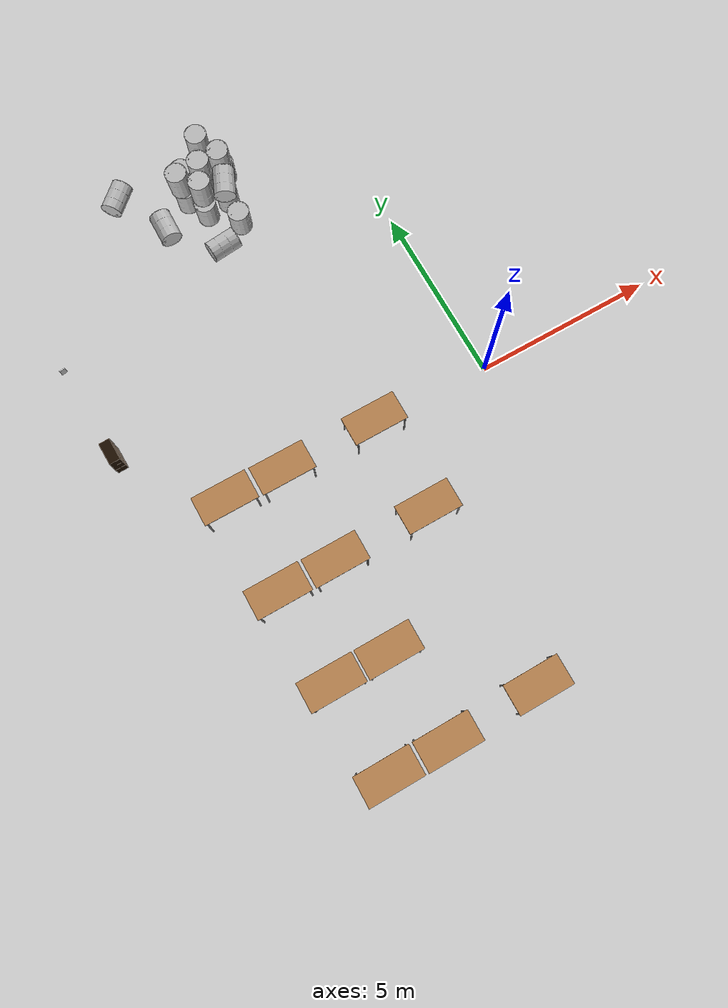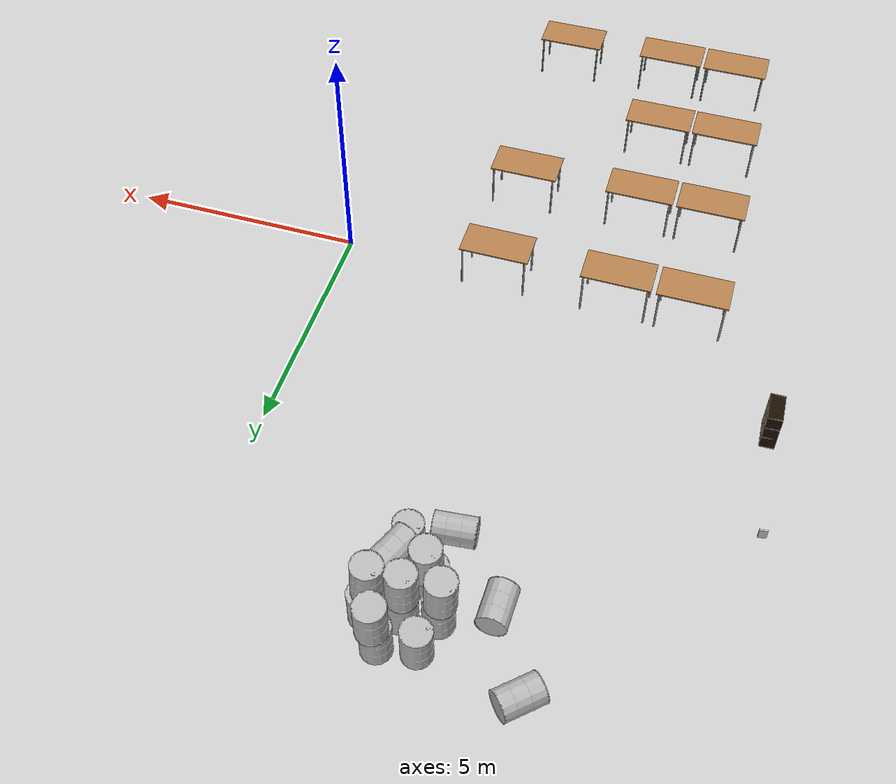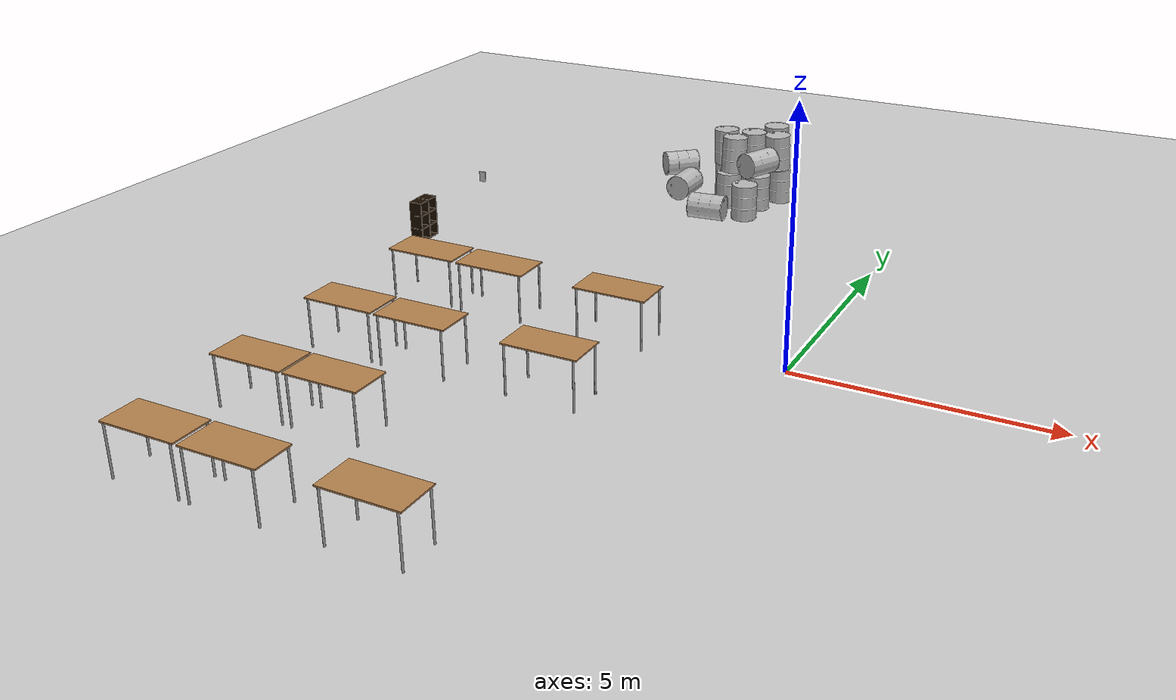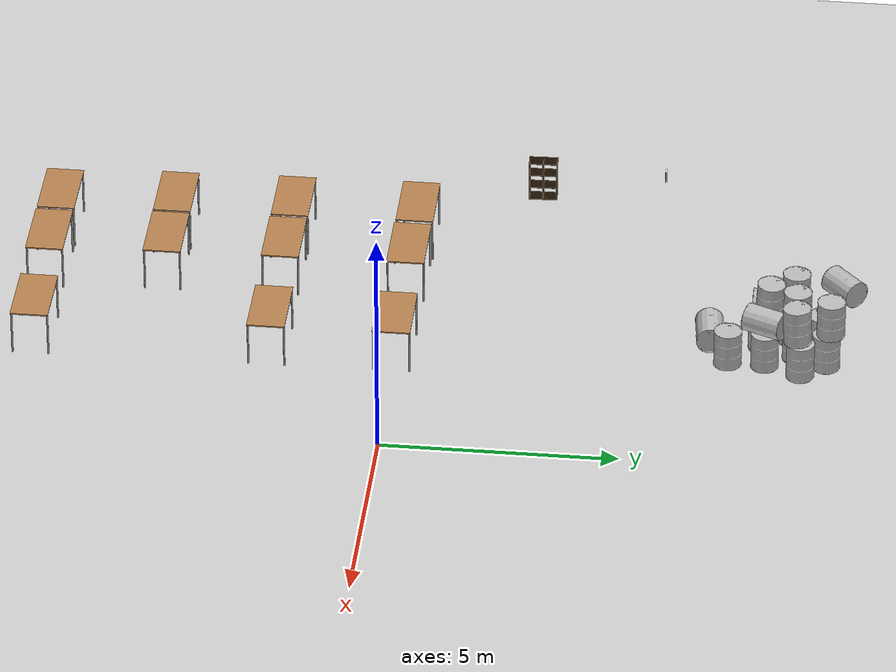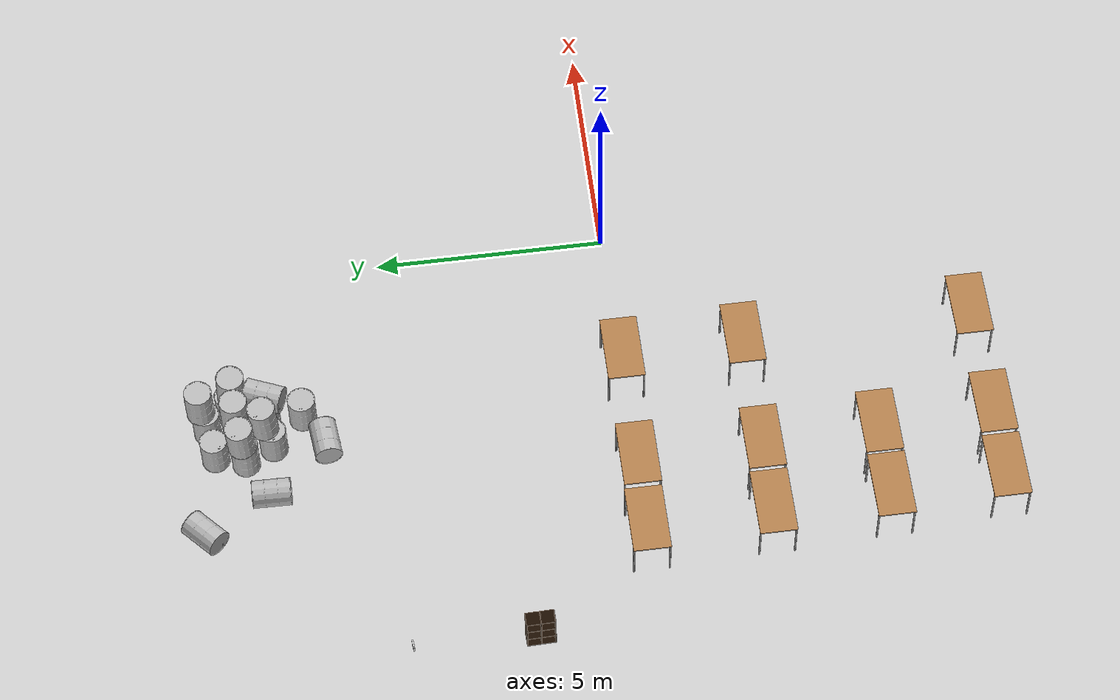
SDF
<sdf version="1.7">
 <world name="default">
  <model name="ground_plane">
   <static>1</static>
   <link name="link">
    <collision name="collision">
     <geometry><plane><normal>0 0 1</normal><size>100 100</size></plane></geometry>
     <surface><friction><ode><mu>100</mu><mu2>50</mu2></ode></friction></surface>
    </collision>
    <visual name="visual">
     <cast_shadows>0</cast_shadows>
     <geometry><plane><normal>0 0 1</normal><size>100 100</size></plane></geometry>
     <material>
      <script><uri>file://media/materials/scripts/gazebo.material</uri><name>Gazebo/Grey</name></script>
     </material>
    </visual>
   </link>
  </model>
  <model name="table">
   <static>1</static>
   <link name="link">
    <collision name="surface">
     <pose>0 0 1 0 -0 0</pose>
     <geometry><box><size>1.5 0.8 0.03</size></box></geometry>
     <surface><friction><ode><mu>0.6</mu><mu2>0.6</mu2></ode></friction></surface>
    </collision>
    <visual name="visual1">
     <pose>0 0 1 0 -0 0</pose>
     <geometry><box><size>1.5 0.8 0.03</size></box></geometry>
     <material>
      <script><uri>file://media/materials/scripts/gazebo.material</uri><name>Gazebo/Wood</name></script>
     </material>
    </visual>
    <collision name="front_left_leg">
     <pose>0.68 0.38 0.5 0 -0 0</pose>
     <geometry><cylinder><radius>0.02</radius><length>1</length></cylinder></geometry>
    </collision>
    <visual name="front_left_leg">
     <pose>0.68 0.38 0.5 0 -0 0</pose>
     <geometry><cylinder><radius>0.02</radius><length>1</length></cylinder></geometry>
     <material>
      <script><uri>file://media/materials/scripts/gazebo.material</uri><name>Gazebo/Grey</name></script>
     </material>
    </visual>
    <collision name="front_right_leg">
     <pose>0.68 -0.38 0.5 0 -0 0</pose>
     <geometry><cylinder><radius>0.02</radius><length>1</length></cylinder></geometry>
    </collision>
    <visual name="front_right_leg">
     <pose>0.68 -0.38 0.5 0 -0 0</pose>
     <geometry><cylinder><radius>0.02</radius><length>1</length></cylinder></geometry>
     <material>
      <script><uri>file://media/materials/scripts/gazebo.material</uri><name>Gazebo/Grey</name></script>
     </material>
    </visual>
    <collision name="back_right_leg">
     <pose>-0.68 -0.38 0.5 0 -0 0</pose>
     <geometry><cylinder><radius>0.02</radius><length>1</length></cylinder></geometry>
    </collision>
    <visual name="back_right_leg">
     <pose>-0.68 -0.38 0.5 0 -0 0</pose>
     <geometry><cylinder><radius>0.02</radius><length>1</length></cylinder></geometry>
     <material>
      <script><uri>file://media/materials/scripts/gazebo.material</uri><name>Gazebo/Grey</name></script>
     </material>
    </visual>
    <collision name="back_left_leg">
     <pose>-0.68 0.38 0.5 0 -0 0</pose>
     <geometry><cylinder><radius>0.02</radius><length>1</length></cylinder></geometry>
    </collision>
    <visual name="back_left_leg">
     <pose>-0.68 0.38 0.5 0 -0 0</pose>
     <geometry><cylinder><radius>0.02</radius><length>1</length></cylinder></geometry>
     <material>
      <script><uri>file://media/materials/scripts/gazebo.material</uri><name>Gazebo/Grey</name></script>
     </material>
    </visual>
   </link>
   <pose>-7.55177 -2.65765 0 0 -0 0</pose>
  </model>
  <model name="table_clone">
   <static>1</static>
   <link name="link">
    <collision name="surface">
     <pose>0 0 1 0 -0 0</pose>
     <geometry><box><size>1.5 0.8 0.03</size></box></geometry>
     <surface><friction><ode><mu>0.6</mu><mu2>0.6</mu2></ode></friction></surface>
    </collision>
    <visual name="visual1">
     <pose>0 0 1 0 -0 0</pose>
     <geometry><box><size>1.5 0.8 0.03</size></box></geometry>
     <material>
      <script><uri>file://media/materials/scripts/gazebo.material</uri><name>Gazebo/Wood</name></script>
     </material>
    </visual>
    <collision name="front_left_leg">
     <pose>0.68 0.38 0.5 0 -0 0</pose>
     <geometry><cylinder><radius>0.02</radius><length>1</length></cylinder></geometry>
    </collision>
    <visual name="front_left_leg">
     <pose>0.68 0.38 0.5 0 -0 0</pose>
     <geometry><cylinder><radius>0.02</radius><length>1</length></cylinder></geometry>
     <material>
      <script><uri>file://media/materials/scripts/gazebo.material</uri><name>Gazebo/Grey</name></script>
     </material>
    </visual>
    <collision name="front_right_leg">
     <pose>0.68 -0.38 0.5 0 -0 0</pose>
     <geometry><cylinder><radius>0.02</radius><length>1</length></cylinder></geometry>
    </collision>
    <visual name="front_right_leg">
     <pose>0.68 -0.38 0.5 0 -0 0</pose>
     <geometry><cylinder><radius>0.02</radius><length>1</length></cylinder></geometry>
     <material>
      <script><uri>file://media/materials/scripts/gazebo.material</uri><name>Gazebo/Grey</name></script>
     </material>
    </visual>
    <collision name="back_right_leg">
     <pose>-0.68 -0.38 0.5 0 -0 0</pose>
     <geometry><cylinder><radius>0.02</radius><length>1</length></cylinder></geometry>
    </collision>
    <visual name="back_right_leg">
     <pose>-0.68 -0.38 0.5 0 -0 0</pose>
     <geometry><cylinder><radius>0.02</radius><length>1</length></cylinder></geometry>
     <material>
      <script><uri>file://media/materials/scripts/gazebo.material</uri><name>Gazebo/Grey</name></script>
     </material>
    </visual>
    <collision name="back_left_leg">
     <pose>-0.68 0.38 0.5 0 -0 0</pose>
     <geometry><cylinder><radius>0.02</radius><length>1</length></cylinder></geometry>
    </collision>
    <visual name="back_left_leg">
     <pose>-0.68 0.38 0.5 0 -0 0</pose>
     <geometry><cylinder><radius>0.02</radius><length>1</length></cylinder></geometry>
     <material>
      <script><uri>file://media/materials/scripts/gazebo.material</uri><name>Gazebo/Grey</name></script>
     </material>
    </visual>
   </link>
   <pose>-5.96904 -2.67059 0 0 -0 0</pose>
  </model>
  <model name="table_clone_0">
   <static>1</static>
   <link name="link">
    <collision name="surface">
     <pose>0 0 1 0 -0 0</pose>
     <geometry><box><size>1.5 0.8 0.03</size></box></geometry>
     <surface><friction><ode><mu>0.6</mu><mu2>0.6</mu2></ode></friction></surface>
    </collision>
    <visual name="visual1">
     <pose>0 0 1 0 -0 0</pose>
     <geometry><box><size>1.5 0.8 0.03</size></box></geometry>
     <material>
      <script><uri>file://media/materials/scripts/gazebo.material</uri><name>Gazebo/Wood</name></script>
     </material>
    </visual>
    <collision name="front_left_leg">
     <pose>0.68 0.38 0.5 0 -0 0</pose>
     <geometry><cylinder><radius>0.02</radius><length>1</length></cylinder></geometry>
    </collision>
    <visual name="front_left_leg">
     <pose>0.68 0.38 0.5 0 -0 0</pose>
     <geometry><cylinder><radius>0.02</radius><length>1</length></cylinder></geometry>
     <material>
      <script><uri>file://media/materials/scripts/gazebo.material</uri><name>Gazebo/Grey</name></script>
     </material>
    </visual>
    <collision name="front_right_leg">
     <pose>0.68 -0.38 0.5 0 -0 0</pose>
     <geometry><cylinder><radius>0.02</radius><length>1</length></cylinder></geometry>
    </collision>
    <visual name="front_right_leg">
     <pose>0.68 -0.38 0.5 0 -0 0</pose>
     <geometry><cylinder><radius>0.02</radius><length>1</length></cylinder></geometry>
     <material>
      <script><uri>file://media/materials/scripts/gazebo.material</uri><name>Gazebo/Grey</name></script>
     </material>
    </visual>
    <collision name="back_right_leg">
     <pose>-0.68 -0.38 0.5 0 -0 0</pose>
     <geometry><cylinder><radius>0.02</radius><length>1</length></cylinder></geometry>
    </collision>
    <visual name="back_right_leg">
     <pose>-0.68 -0.38 0.5 0 -0 0</pose>
     <geometry><cylinder><radius>0.02</radius><length>1</length></cylinder></geometry>
     <material>
      <script><uri>file://media/materials/scripts/gazebo.material</uri><name>Gazebo/Grey</name></script>
     </material>
    </visual>
    <collision name="back_left_leg">
     <pose>-0.68 0.38 0.5 0 -0 0</pose>
     <geometry><cylinder><radius>0.02</radius><length>1</length></cylinder></geometry>
    </collision>
    <visual name="back_left_leg">
     <pose>-0.68 0.38 0.5 0 -0 0</pose>
     <geometry><cylinder><radius>0.02</radius><length>1</length></cylinder></geometry>
     <material>
      <script><uri>file://media/materials/scripts/gazebo.material</uri><name>Gazebo/Grey</name></script>
     </material>
    </visual>
   </link>
   <pose>-3.33754 -2.64504 0 0 -0 0</pose>
  </model>
  <model name="table_clone_2">
   <static>1</static>
   <link name="link">
    <collision name="surface">
     <pose>0 0 1 0 -0 0</pose>
     <geometry><box><size>1.5 0.8 0.03</size></box></geometry>
     <surface><friction><ode><mu>0.6</mu><mu2>0.6</mu2></ode></friction></surface>
    </collision>
    <visual name="visual1">
     <pose>0 0 1 0 -0 0</pose>
     <geometry><box><size>1.5 0.8 0.03</size></box></geometry>
     <material>
      <script><uri>file://media/materials/scripts/gazebo.material</uri><name>Gazebo/Wood</name></script>
     </material>
    </visual>
    <collision name="front_left_leg">
     <pose>0.68 0.38 0.5 0 -0 0</pose>
     <geometry><cylinder><radius>0.02</radius><length>1</length></cylinder></geometry>
    </collision>
    <visual name="front_left_leg">
     <pose>0.68 0.38 0.5 0 -0 0</pose>
     <geometry><cylinder><radius>0.02</radius><length>1</length></cylinder></geometry>
     <material>
      <script><uri>file://media/materials/scripts/gazebo.material</uri><name>Gazebo/Grey</name></script>
     </material>
    </visual>
    <collision name="front_right_leg">
     <pose>0.68 -0.38 0.5 0 -0 0</pose>
     <geometry><cylinder><radius>0.02</radius><length>1</length></cylinder></geometry>
    </collision>
    <visual name="front_right_leg">
     <pose>0.68 -0.38 0.5 0 -0 0</pose>
     <geometry><cylinder><radius>0.02</radius><length>1</length></cylinder></geometry>
     <material>
      <script><uri>file://media/materials/scripts/gazebo.material</uri><name>Gazebo/Grey</name></script>
     </material>
    </visual>
    <collision name="back_right_leg">
     <pose>-0.68 -0.38 0.5 0 -0 0</pose>
     <geometry><cylinder><radius>0.02</radius><length>1</length></cylinder></geometry>
    </collision>
    <visual name="back_right_leg">
     <pose>-0.68 -0.38 0.5 0 -0 0</pose>
     <geometry><cylinder><radius>0.02</radius><length>1</length></cylinder></geometry>
     <material>
      <script><uri>file://media/materials/scripts/gazebo.material</uri><name>Gazebo/Grey</name></script>
     </material>
    </visual>
    <collision name="back_left_leg">
     <pose>-0.68 0.38 0.5 0 -0 0</pose>
     <geometry><cylinder><radius>0.02</radius><length>1</length></cylinder></geometry>
    </collision>
    <visual name="back_left_leg">
     <pose>-0.68 0.38 0.5 0 -0 0</pose>
     <geometry><cylinder><radius>0.02</radius><length>1</length></cylinder></geometry>
     <material>
      <script><uri>file://media/materials/scripts/gazebo.material</uri><name>Gazebo/Grey</name></script>
     </material>
    </visual>
   </link>
   <pose>-7.46217 -5.18144 0 0 -0 0</pose>
  </model>
  <model name="table_clone_3">
   <static>1</static>
   <link name="link">
    <collision name="surface">
     <pose>0 0 1 0 -0 0</pose>
     <geometry><box><size>1.5 0.8 0.03</size></box></geometry>
     <surface><friction><ode><mu>0.6</mu><mu2>0.6</mu2></ode></friction></surface>
    </collision>
    <visual name="visual1">
     <pose>0 0 1 0 -0 0</pose>
     <geometry><box><size>1.5 0.8 0.03</size></box></geometry>
     <material>
      <script><uri>file://media/materials/scripts/gazebo.material</uri><name>Gazebo/Wood</name></script>
     </material>
    </visual>
    <collision name="front_left_leg">
     <pose>0.68 0.38 0.5 0 -0 0</pose>
     <geometry><cylinder><radius>0.02</radius><length>1</length></cylinder></geometry>
    </collision>
    <visual name="front_left_leg">
     <pose>0.68 0.38 0.5 0 -0 0</pose>
     <geometry><cylinder><radius>0.02</radius><length>1</length></cylinder></geometry>
     <material>
      <script><uri>file://media/materials/scripts/gazebo.material</uri><name>Gazebo/Grey</name></script>
     </material>
    </visual>
    <collision name="front_right_leg">
     <pose>0.68 -0.38 0.5 0 -0 0</pose>
     <geometry><cylinder><radius>0.02</radius><length>1</length></cylinder></geometry>
    </collision>
    <visual name="front_right_leg">
     <pose>0.68 -0.38 0.5 0 -0 0</pose>
     <geometry><cylinder><radius>0.02</radius><length>1</length></cylinder></geometry>
     <material>
      <script><uri>file://media/materials/scripts/gazebo.material</uri><name>Gazebo/Grey</name></script>
     </material>
    </visual>
    <collision name="back_right_leg">
     <pose>-0.68 -0.38 0.5 0 -0 0</pose>
     <geometry><cylinder><radius>0.02</radius><length>1</length></cylinder></geometry>
    </collision>
    <visual name="back_right_leg">
     <pose>-0.68 -0.38 0.5 0 -0 0</pose>
     <geometry><cylinder><radius>0.02</radius><length>1</length></cylinder></geometry>
     <material>
      <script><uri>file://media/materials/scripts/gazebo.material</uri><name>Gazebo/Grey</name></script>
     </material>
    </visual>
    <collision name="back_left_leg">
     <pose>-0.68 0.38 0.5 0 -0 0</pose>
     <geometry><cylinder><radius>0.02</radius><length>1</length></cylinder></geometry>
    </collision>
    <visual name="back_left_leg">
     <pose>-0.68 0.38 0.5 0 -0 0</pose>
     <geometry><cylinder><radius>0.02</radius><length>1</length></cylinder></geometry>
     <material>
      <script><uri>file://media/materials/scripts/gazebo.material</uri><name>Gazebo/Grey</name></script>
     </material>
    </visual>
   </link>
   <pose>-5.90194 -5.18683 0 0 -0 0</pose>
  </model>
  <model name="table_clone_6">
   <static>1</static>
   <link name="link">
    <collision name="surface">
     <pose>0 0 1 0 -0 0</pose>
     <geometry><box><size>1.5 0.8 0.03</size></box></geometry>
     <surface><friction><ode><mu>0.6</mu><mu2>0.6</mu2></ode></friction></surface>
    </collision>
    <visual name="visual1">
     <pose>0 0 1 0 -0 0</pose>
     <geometry><box><size>1.5 0.8 0.03</size></box></geometry>
     <material>
      <script><uri>file://media/materials/scripts/gazebo.material</uri><name>Gazebo/Wood</name></script>
     </material>
    </visual>
    <collision name="front_left_leg">
     <pose>0.68 0.38 0.5 0 -0 0</pose>
     <geometry><cylinder><radius>0.02</radius><length>1</length></cylinder></geometry>
    </collision>
    <visual name="front_left_leg">
     <pose>0.68 0.38 0.5 0 -0 0</pose>
     <geometry><cylinder><radius>0.02</radius><length>1</length></cylinder></geometry>
     <material>
      <script><uri>file://media/materials/scripts/gazebo.material</uri><name>Gazebo/Grey</name></script>
     </material>
    </visual>
    <collision name="front_right_leg">
     <pose>0.68 -0.38 0.5 0 -0 0</pose>
     <geometry><cylinder><radius>0.02</radius><length>1</length></cylinder></geometry>
    </collision>
    <visual name="front_right_leg">
     <pose>0.68 -0.38 0.5 0 -0 0</pose>
     <geometry><cylinder><radius>0.02</radius><length>1</length></cylinder></geometry>
     <material>
      <script><uri>file://media/materials/scripts/gazebo.material</uri><name>Gazebo/Grey</name></script>
     </material>
    </visual>
    <collision name="back_right_leg">
     <pose>-0.68 -0.38 0.5 0 -0 0</pose>
     <geometry><cylinder><radius>0.02</radius><length>1</length></cylinder></geometry>
    </collision>
    <visual name="back_right_leg">
     <pose>-0.68 -0.38 0.5 0 -0 0</pose>
     <geometry><cylinder><radius>0.02</radius><length>1</length></cylinder></geometry>
     <material>
      <script><uri>file://media/materials/scripts/gazebo.material</uri><name>Gazebo/Grey</name></script>
     </material>
    </visual>
    <collision name="back_left_leg">
     <pose>-0.68 0.38 0.5 0 -0 0</pose>
     <geometry><cylinder><radius>0.02</radius><length>1</length></cylinder></geometry>
    </collision>
    <visual name="back_left_leg">
     <pose>-0.68 0.38 0.5 0 -0 0</pose>
     <geometry><cylinder><radius>0.02</radius><length>1</length></cylinder></geometry>
     <material>
      <script><uri>file://media/materials/scripts/gazebo.material</uri><name>Gazebo/Grey</name></script>
     </material>
    </visual>
   </link>
   <pose>-7.31794 -7.66718 0 0 -0 0</pose>
  </model>
  <model name="table_clone_7">
   <static>1</static>
   <link name="link">
    <collision name="surface">
     <pose>0 0 1 0 -0 0</pose>
     <geometry><box><size>1.5 0.8 0.03</size></box></geometry>
     <surface><friction><ode><mu>0.6</mu><mu2>0.6</mu2></ode></friction></surface>
    </collision>
    <visual name="visual1">
     <pose>0 0 1 0 -0 0</pose>
     <geometry><box><size>1.5 0.8 0.03</size></box></geometry>
     <material>
      <script><uri>file://media/materials/scripts/gazebo.material</uri><name>Gazebo/Wood</name></script>
     </material>
    </visual>
    <collision name="front_left_leg">
     <pose>0.68 0.38 0.5 0 -0 0</pose>
     <geometry><cylinder><radius>0.02</radius><length>1</length></cylinder></geometry>
    </collision>
    <visual name="front_left_leg">
     <pose>0.68 0.38 0.5 0 -0 0</pose>
     <geometry><cylinder><radius>0.02</radius><length>1</length></cylinder></geometry>
     <material>
      <script><uri>file://media/materials/scripts/gazebo.material</uri><name>Gazebo/Grey</name></script>
     </material>
    </visual>
    <collision name="front_right_leg">
     <pose>0.68 -0.38 0.5 0 -0 0</pose>
     <geometry><cylinder><radius>0.02</radius><length>1</length></cylinder></geometry>
    </collision>
    <visual name="front_right_leg">
     <pose>0.68 -0.38 0.5 0 -0 0</pose>
     <geometry><cylinder><radius>0.02</radius><length>1</length></cylinder></geometry>
     <material>
      <script><uri>file://media/materials/scripts/gazebo.material</uri><name>Gazebo/Grey</name></script>
     </material>
    </visual>
    <collision name="back_right_leg">
     <pose>-0.68 -0.38 0.5 0 -0 0</pose>
     <geometry><cylinder><radius>0.02</radius><length>1</length></cylinder></geometry>
    </collision>
    <visual name="back_right_leg">
     <pose>-0.68 -0.38 0.5 0 -0 0</pose>
     <geometry><cylinder><radius>0.02</radius><length>1</length></cylinder></geometry>
     <material>
      <script><uri>file://media/materials/scripts/gazebo.material</uri><name>Gazebo/Grey</name></script>
     </material>
    </visual>
    <collision name="back_left_leg">
     <pose>-0.68 0.38 0.5 0 -0 0</pose>
     <geometry><cylinder><radius>0.02</radius><length>1</length></cylinder></geometry>
    </collision>
    <visual name="back_left_leg">
     <pose>-0.68 0.38 0.5 0 -0 0</pose>
     <geometry><cylinder><radius>0.02</radius><length>1</length></cylinder></geometry>
     <material>
      <script><uri>file://media/materials/scripts/gazebo.material</uri><name>Gazebo/Grey</name></script>
     </material>
    </visual>
   </link>
   <pose>-5.73834 -7.67638 0 0 -0 0</pose>
  </model>
  <model name="table_clone_8">
   <static>1</static>
   <link name="link">
    <collision name="surface">
     <pose>0 0 1 0 -0 0</pose>
     <geometry><box><size>1.5 0.8 0.03</size></box></geometry>
     <surface><friction><ode><mu>0.6</mu><mu2>0.6</mu2></ode></friction></surface>
    </collision>
    <visual name="visual1">
     <pose>0 0 1 0 -0 0</pose>
     <geometry><box><size>1.5 0.8 0.03</size></box></geometry>
     <material>
      <script><uri>file://media/materials/scripts/gazebo.material</uri><name>Gazebo/Wood</name></script>
     </material>
    </visual>
    <collision name="front_left_leg">
     <pose>0.68 0.38 0.5 0 -0 0</pose>
     <geometry><cylinder><radius>0.02</radius><length>1</length></cylinder></geometry>
    </collision>
    <visual name="front_left_leg">
     <pose>0.68 0.38 0.5 0 -0 0</pose>
     <geometry><cylinder><radius>0.02</radius><length>1</length></cylinder></geometry>
     <material>
      <script><uri>file://media/materials/scripts/gazebo.material</uri><name>Gazebo/Grey</name></script>
     </material>
    </visual>
    <collision name="front_right_leg">
     <pose>0.68 -0.38 0.5 0 -0 0</pose>
     <geometry><cylinder><radius>0.02</radius><length>1</length></cylinder></geometry>
    </collision>
    <visual name="front_right_leg">
     <pose>0.68 -0.38 0.5 0 -0 0</pose>
     <geometry><cylinder><radius>0.02</radius><length>1</length></cylinder></geometry>
     <material>
      <script><uri>file://media/materials/scripts/gazebo.material</uri><name>Gazebo/Grey</name></script>
     </material>
    </visual>
    <collision name="back_right_leg">
     <pose>-0.68 -0.38 0.5 0 -0 0</pose>
     <geometry><cylinder><radius>0.02</radius><length>1</length></cylinder></geometry>
    </collision>
    <visual name="back_right_leg">
     <pose>-0.68 -0.38 0.5 0 -0 0</pose>
     <geometry><cylinder><radius>0.02</radius><length>1</length></cylinder></geometry>
     <material>
      <script><uri>file://media/materials/scripts/gazebo.material</uri><name>Gazebo/Grey</name></script>
     </material>
    </visual>
    <collision name="back_left_leg">
     <pose>-0.68 0.38 0.5 0 -0 0</pose>
     <geometry><cylinder><radius>0.02</radius><length>1</length></cylinder></geometry>
    </collision>
    <visual name="back_left_leg">
     <pose>-0.68 0.38 0.5 0 -0 0</pose>
     <geometry><cylinder><radius>0.02</radius><length>1</length></cylinder></geometry>
     <material>
      <script><uri>file://media/materials/scripts/gazebo.material</uri><name>Gazebo/Grey</name></script>
     </material>
    </visual>
   </link>
   <pose>-3.24202 -7.62181 0 0 -0 0</pose>
  </model>
  <model name="table_clone_10">
   <static>1</static>
   <link name="link">
    <collision name="surface">
     <pose>0 0 1 0 -0 0</pose>
     <geometry><box><size>1.5 0.8 0.03</size></box></geometry>
     <surface><friction><ode><mu>0.6</mu><mu2>0.6</mu2></ode></friction></surface>
    </collision>
    <visual name="visual1">
     <pose>0 0 1 0 -0 0</pose>
     <geometry><box><size>1.5 0.8 0.03</size></box></geometry>
     <material>
      <script><uri>file://media/materials/scripts/gazebo.material</uri><name>Gazebo/Wood</name></script>
     </material>
    </visual>
    <collision name="front_left_leg">
     <pose>0.68 0.38 0.5 0 -0 0</pose>
     <geometry><cylinder><radius>0.02</radius><length>1</length></cylinder></geometry>
    </collision>
    <visual name="front_left_leg">
     <pose>0.68 0.38 0.5 0 -0 0</pose>
     <geometry><cylinder><radius>0.02</radius><length>1</length></cylinder></geometry>
     <material>
      <script><uri>file://media/materials/scripts/gazebo.material</uri><name>Gazebo/Grey</name></script>
     </material>
    </visual>
    <collision name="front_right_leg">
     <pose>0.68 -0.38 0.5 0 -0 0</pose>
     <geometry><cylinder><radius>0.02</radius><length>1</length></cylinder></geometry>
    </collision>
    <visual name="front_right_leg">
     <pose>0.68 -0.38 0.5 0 -0 0</pose>
     <geometry><cylinder><radius>0.02</radius><length>1</length></cylinder></geometry>
     <material>
      <script><uri>file://media/materials/scripts/gazebo.material</uri><name>Gazebo/Grey</name></script>
     </material>
    </visual>
    <collision name="back_right_leg">
     <pose>-0.68 -0.38 0.5 0 -0 0</pose>
     <geometry><cylinder><radius>0.02</radius><length>1</length></cylinder></geometry>
    </collision>
    <visual name="back_right_leg">
     <pose>-0.68 -0.38 0.5 0 -0 0</pose>
     <geometry><cylinder><radius>0.02</radius><length>1</length></cylinder></geometry>
     <material>
      <script><uri>file://media/materials/scripts/gazebo.material</uri><name>Gazebo/Grey</name></script>
     </material>
    </visual>
    <collision name="back_left_leg">
     <pose>-0.68 0.38 0.5 0 -0 0</pose>
     <geometry><cylinder><radius>0.02</radius><length>1</length></cylinder></geometry>
    </collision>
    <visual name="back_left_leg">
     <pose>-0.68 0.38 0.5 0 -0 0</pose>
     <geometry><cylinder><radius>0.02</radius><length>1</length></cylinder></geometry>
     <material>
      <script><uri>file://media/materials/scripts/gazebo.material</uri><name>Gazebo/Grey</name></script>
     </material>
    </visual>
   </link>
   <pose>-7.61701 0.015326 0 0 -0 0</pose>
  </model>
  <model name="table_clone_11">
   <static>1</static>
   <link name="link">
    <collision name="surface">
     <pose>0 0 1 0 -0 0</pose>
     <geometry><box><size>1.5 0.8 0.03</size></box></geometry>
     <surface><friction><ode><mu>0.6</mu><mu2>0.6</mu2></ode></friction></surface>
    </collision>
    <visual name="visual1">
     <pose>0 0 1 0 -0 0</pose>
     <geometry><box><size>1.5 0.8 0.03</size></box></geometry>
     <material>
      <script><uri>file://media/materials/scripts/gazebo.material</uri><name>Gazebo/Wood</name></script>
     </material>
    </visual>
    <collision name="front_left_leg">
     <pose>0.68 0.38 0.5 0 -0 0</pose>
     <geometry><cylinder><radius>0.02</radius><length>1</length></cylinder></geometry>
    </collision>
    <visual name="front_left_leg">
     <pose>0.68 0.38 0.5 0 -0 0</pose>
     <geometry><cylinder><radius>0.02</radius><length>1</length></cylinder></geometry>
     <material>
      <script><uri>file://media/materials/scripts/gazebo.material</uri><name>Gazebo/Grey</name></script>
     </material>
    </visual>
    <collision name="front_right_leg">
     <pose>0.68 -0.38 0.5 0 -0 0</pose>
     <geometry><cylinder><radius>0.02</radius><length>1</length></cylinder></geometry>
    </collision>
    <visual name="front_right_leg">
     <pose>0.68 -0.38 0.5 0 -0 0</pose>
     <geometry><cylinder><radius>0.02</radius><length>1</length></cylinder></geometry>
     <material>
      <script><uri>file://media/materials/scripts/gazebo.material</uri><name>Gazebo/Grey</name></script>
     </material>
    </visual>
    <collision name="back_right_leg">
     <pose>-0.68 -0.38 0.5 0 -0 0</pose>
     <geometry><cylinder><radius>0.02</radius><length>1</length></cylinder></geometry>
    </collision>
    <visual name="back_right_leg">
     <pose>-0.68 -0.38 0.5 0 -0 0</pose>
     <geometry><cylinder><radius>0.02</radius><length>1</length></cylinder></geometry>
     <material>
      <script><uri>file://media/materials/scripts/gazebo.material</uri><name>Gazebo/Grey</name></script>
     </material>
    </visual>
    <collision name="back_left_leg">
     <pose>-0.68 0.38 0.5 0 -0 0</pose>
     <geometry><cylinder><radius>0.02</radius><length>1</length></cylinder></geometry>
    </collision>
    <visual name="back_left_leg">
     <pose>-0.68 0.38 0.5 0 -0 0</pose>
     <geometry><cylinder><radius>0.02</radius><length>1</length></cylinder></geometry>
     <material>
      <script><uri>file://media/materials/scripts/gazebo.material</uri><name>Gazebo/Grey</name></script>
     </material>
    </visual>
   </link>
   <pose>-6.01438 -0.004729 0 0 -0 0</pose>
  </model>
  <model name="table_clone_12">
   <static>1</static>
   <link name="link">
    <collision name="surface">
     <pose>0 0 1 0 -0 0</pose>
     <geometry><box><size>1.5 0.8 0.03</size></box></geometry>
     <surface><friction><ode><mu>0.6</mu><mu2>0.6</mu2></ode></friction></surface>
    </collision>
    <visual name="visual1">
     <pose>0 0 1 0 -0 0</pose>
     <geometry><box><size>1.5 0.8 0.03</size></box></geometry>
     <material>
      <script><uri>file://media/materials/scripts/gazebo.material</uri><name>Gazebo/Wood</name></script>
     </material>
    </visual>
    <collision name="front_left_leg">
     <pose>0.68 0.38 0.5 0 -0 0</pose>
     <geometry><cylinder><radius>0.02</radius><length>1</length></cylinder></geometry>
    </collision>
    <visual name="front_left_leg">
     <pose>0.68 0.38 0.5 0 -0 0</pose>
     <geometry><cylinder><radius>0.02</radius><length>1</length></cylinder></geometry>
     <material>
      <script><uri>file://media/materials/scripts/gazebo.material</uri><name>Gazebo/Grey</name></script>
     </material>
    </visual>
    <collision name="front_right_leg">
     <pose>0.68 -0.38 0.5 0 -0 0</pose>
     <geometry><cylinder><radius>0.02</radius><length>1</length></cylinder></geometry>
    </collision>
    <visual name="front_right_leg">
     <pose>0.68 -0.38 0.5 0 -0 0</pose>
     <geometry><cylinder><radius>0.02</radius><length>1</length></cylinder></geometry>
     <material>
      <script><uri>file://media/materials/scripts/gazebo.material</uri><name>Gazebo/Grey</name></script>
     </material>
    </visual>
    <collision name="back_right_leg">
     <pose>-0.68 -0.38 0.5 0 -0 0</pose>
     <geometry><cylinder><radius>0.02</radius><length>1</length></cylinder></geometry>
    </collision>
    <visual name="back_right_leg">
     <pose>-0.68 -0.38 0.5 0 -0 0</pose>
     <geometry><cylinder><radius>0.02</radius><length>1</length></cylinder></geometry>
     <material>
      <script><uri>file://media/materials/scripts/gazebo.material</uri><name>Gazebo/Grey</name></script>
     </material>
    </visual>
    <collision name="back_left_leg">
     <pose>-0.68 0.38 0.5 0 -0 0</pose>
     <geometry><cylinder><radius>0.02</radius><length>1</length></cylinder></geometry>
    </collision>
    <visual name="back_left_leg">
     <pose>-0.68 0.38 0.5 0 -0 0</pose>
     <geometry><cylinder><radius>0.02</radius><length>1</length></cylinder></geometry>
     <material>
      <script><uri>file://media/materials/scripts/gazebo.material</uri><name>Gazebo/Grey</name></script>
     </material>
    </visual>
   </link>
   <pose>-3.38458 -0.016046 0 0 -0 0</pose>
  </model>
  <model name="6_Cube_StorageE">
   <link name="Wall_0">
    <pose>0 0 0.01 0 -0 0</pose>
    <inertial>
     <mass>1.6201</mass>
     <inertia><ixx>0.0119</ixx><iyy>0.0631</iyy><izz>0.0513</izz><ixy>0</ixy><ixz>0</ixz><iyz>0</iyz></inertia>
    </inertial>
    <collision name="Wall_0_Collision"><geometry><box><size>0.616 0.296 0.02</size></box></geometry></collision>
    <visual name="Wall_0_Visual">
     <geometry><box><size>0.616 0.296 0.02</size></box></geometry>
     <material>
      <script><uri>file://media/materials/scripts/gazebo.material</uri><name>Gazebo/Grey</name></script>
      <ambient>0.105882 0.0509804 0 1</ambient>
     </material>
    </visual>
   </link>
   <joint name="0_2" type="fixed">
    <pose>-0.308 0 0 0 -0 0</pose>
    <parent>Wall_2</parent>
    <child>Wall_0</child>
    <axis><xyz>1 0 0</xyz><limit><lower>-1e+16</lower><upper>1e+16</upper></limit></axis>
   </joint>
   <joint name="0_12" type="fixed">
    <parent>Wall_12</parent>
    <child>Wall_0</child>
    <axis><xyz>0 0 1</xyz><limit><lower>-1e+16</lower><upper>1e+16</upper></limit></axis>
   </joint>
   <joint name="0_4" type="fixed">
    <pose>0.308 0 0 0 -0 0</pose>
    <parent>Wall_4</parent>
    <child>Wall_0</child>
    <axis><xyz>1 0 0</xyz><limit><lower>-1e+16</lower><upper>1e+16</upper></limit></axis>
   </joint>
   <link name="Wall_10">
    <pose>0 0 0.61 0 -0 0</pose>
    <inertial>
     <mass>1.6201</mass>
     <inertia><ixx>0.0119</ixx><iyy>0.0631</iyy><izz>0.0513</izz><ixy>0</ixy><ixz>0</ixz><iyz>0</iyz></inertia>
    </inertial>
    <collision name="Wall_10_Collision"><geometry><box><size>0.616 0.296 0.02</size></box></geometry></collision>
    <visual name="Wall_10_Visual">
     <geometry><box><size>0.616 0.296 0.02</size></box></geometry>
     <material>
      <script><uri>file://media/materials/scripts/gazebo.material</uri><name>Gazebo/Grey</name></script>
      <ambient>0.105882 0.0509804 0 1</ambient>
     </material>
    </visual>
   </link>
   <joint name="10_2" type="fixed">
    <pose>-0.308 0 0 0 -0 0</pose>
    <parent>Wall_2</parent>
    <child>Wall_10</child>
    <axis><xyz>1 0 0</xyz><limit><lower>-1e+16</lower><upper>1e+16</upper></limit></axis>
   </joint>
   <joint name="10_12" type="fixed">
    <parent>Wall_12</parent>
    <child>Wall_10</child>
    <axis><xyz>0 0 1</xyz><limit><lower>-1e+16</lower><upper>1e+16</upper></limit></axis>
   </joint>
   <joint name="10_4" type="fixed">
    <pose>0.308 0 0 0 -0 0</pose>
    <parent>Wall_4</parent>
    <child>Wall_10</child>
    <axis><xyz>1 0 0</xyz><limit><lower>-1e+16</lower><upper>1e+16</upper></limit></axis>
   </joint>
   <link name="Wall_12">
    <pose>0 0 0.4575 0 -0 0</pose>
    <inertial>
     <mass>2.4065</mass>
     <inertia><ixx>0.0177</ixx><iyy>0.1855</iyy><izz>0.168</izz><ixy>0</ixy><ixz>0</ixz><iyz>0</iyz></inertia>
    </inertial>
    <collision name="Wall_12_Collision"><geometry><box><size>0.02 0.296 0.915</size></box></geometry></collision>
    <visual name="Wall_12_Visual">
     <geometry><box><size>0.02 0.296 0.915</size></box></geometry>
     <material>
      <script><uri>file://media/materials/scripts/gazebo.material</uri><name>Gazebo/Grey</name></script>
      <ambient>0.105882 0.0509804 0 1</ambient>
     </material>
    </visual>
   </link>
   <link name="Wall_2">
    <pose>-0.298 0 0.4575 0 -0 0</pose>
    <inertial>
     <mass>2.4065</mass>
     <inertia><ixx>0.0177</ixx><iyy>0.1855</iyy><izz>0.168</izz><ixy>0</ixy><ixz>0</ixz><iyz>0</iyz></inertia>
    </inertial>
    <collision name="Wall_2_Collision"><geometry><box><size>0.02 0.296 0.915</size></box></geometry></collision>
    <visual name="Wall_2_Visual">
     <geometry><box><size>0.02 0.296 0.915</size></box></geometry>
     <material>
      <script><uri>file://media/materials/scripts/gazebo.material</uri><name>Gazebo/Grey</name></script>
      <ambient>0.105882 0.0509804 0 1</ambient>
     </material>
    </visual>
   </link>
   <link name="Wall_4">
    <pose>0.298 0 0.4575 0 -0 0</pose>
    <inertial>
     <mass>2.4065</mass>
     <inertia><ixx>0.0177</ixx><iyy>0.1855</iyy><izz>0.168</izz><ixy>0</ixy><ixz>0</ixz><iyz>0</iyz></inertia>
    </inertial>
    <collision name="Wall_4_Collision"><geometry><box><size>0.02 0.296 0.915</size></box></geometry></collision>
    <visual name="Wall_4_Visual">
     <geometry><box><size>0.02 0.296 0.915</size></box></geometry>
     <material>
      <script><uri>file://media/materials/scripts/gazebo.material</uri><name>Gazebo/Grey</name></script>
      <ambient>0.105882 0.0509804 0 1</ambient>
     </material>
    </visual>
   </link>
   <link name="Wall_6">
    <pose>0 0 0.905 0 -0 0</pose>
    <inertial>
     <mass>1.6201</mass>
     <inertia><ixx>0.0119</ixx><iyy>0.0631</iyy><izz>0.0513</izz><ixy>0</ixy><ixz>0</ixz><iyz>0</iyz></inertia>
    </inertial>
    <collision name="Wall_6_Collision"><geometry><box><size>0.616 0.296 0.02</size></box></geometry></collision>
    <visual name="Wall_6_Visual">
     <geometry><box><size>0.616 0.296 0.02</size></box></geometry>
     <material>
      <script><uri>file://media/materials/scripts/gazebo.material</uri><name>Gazebo/Grey</name></script>
      <ambient>0.105882 0.0509804 0 1</ambient>
     </material>
    </visual>
   </link>
   <joint name="6_2" type="fixed">
    <pose>-0.308 0 0 0 -0 0</pose>
    <parent>Wall_2</parent>
    <child>Wall_6</child>
    <axis><xyz>2 0 0</xyz><limit><lower>-1e+16</lower><upper>1e+16</upper></limit></axis>
   </joint>
   <joint name="6_12" type="fixed">
    <parent>Wall_12</parent>
    <child>Wall_6</child>
    <axis><xyz>0 0 1</xyz><limit><lower>-1e+16</lower><upper>1e+16</upper></limit></axis>
   </joint>
   <joint name="6_4" type="fixed">
    <pose>0.308 0 0 0 -0 0</pose>
    <parent>Wall_4</parent>
    <child>Wall_6</child>
    <axis><xyz>1 0 0</xyz><limit><lower>-1e+16</lower><upper>1e+16</upper></limit></axis>
   </joint>
   <link name="Wall_8">
    <pose>0 0 0.305 0 -0 0</pose>
    <inertial>
     <mass>1.6201</mass>
     <inertia><ixx>0.0119</ixx><iyy>0.0631</iyy><izz>0.0513</izz><ixy>0</ixy><ixz>0</ixz><iyz>0</iyz></inertia>
    </inertial>
    <collision name="Wall_8_Collision"><geometry><box><size>0.616 0.296 0.02</size></box></geometry></collision>
    <visual name="Wall_8_Visual">
     <geometry><box><size>0.616 0.296 0.02</size></box></geometry>
     <material>
      <script><uri>file://media/materials/scripts/gazebo.material</uri><name>Gazebo/Grey</name></script>
      <ambient>0.105882 0.0509804 0 1</ambient>
     </material>
    </visual>
   </link>
   <joint name="8_2" type="fixed">
    <pose>-0.308 0 0 0 -0 0</pose>
    <parent>Wall_2</parent>
    <child>Wall_8</child>
    <axis><xyz>1 0 0</xyz><limit><lower>-1e+16</lower><upper>1e+16</upper></limit></axis>
   </joint>
   <joint name="8_12" type="fixed">
    <parent>Wall_12</parent>
    <child>Wall_8</child>
    <axis><xyz>0 0 1</xyz><limit><lower>-1e+16</lower><upper>1e+16</upper></limit></axis>
   </joint>
   <joint name="8_4" type="fixed">
    <pose>0.308 0 0 0 -0 0</pose>
    <parent>Wall_4</parent>
    <child>Wall_8</child>
    <axis><xyz>1 0 0</xyz><limit><lower>-1e+16</lower><upper>1e+16</upper></limit></axis>
   </joint>
   <static>1</static>
   <pose>-9.61216 2.52261 0.018397 0 -0 1.59588</pose>
  </model>
  <model name="book_1">
   <link name="cover">
    <pose>0 -0.000108 0.015405 0 -0 0</pose>
    <visual name="visual">
     <geometry><box><size>0.245 0.16 0.03</size></box></geometry>
     <material>
      <script>
       <uri>model://book_1/materials/scripts</uri>
       <uri>model://book_1/materials/textures</uri>
       <name>book_1</name>
      </script>
     </material>
    </visual>
    <collision name="collision"><geometry><box><size>0.245 0.16 0.03</size></box></geometry></collision>
   </link>
   <link name="page">
    <pose>0 0.000608 0.015405 0 -0 0</pose>
    <visual name="visual">
     <geometry><box><size>0.24502 0.15862 0.028</size></box></geometry>
     <material>
      <lighting>1</lighting>
      <ambient>1 1 1 1</ambient>
      <diffuse>1 1 1 1</diffuse>
      <specular>0.01 0.01 0.01 1</specular>
      <emissive>0 0 0 1</emissive>
      <shader type="vertex"><normal_map>__default__</normal_map></shader>
     </material>
    </visual>
    <collision name="collision"><geometry><box><size>0.245 0.16 0.03</size></box></geometry></collision>
   </link>
   <static>1</static>
   <pose>-9.75646 5.15913 0.632128 2.49149 1.54274 -2.11523</pose>
  </model>
  <model name="toxic_barrel">
   <static>0</static>
   <link name="link">
    <visual name="visual">
     <geometry><mesh><uri>model://toxic_barrel/meshes/barrel_red.obj</uri></mesh></geometry>
    </visual>
    <collision name="collision">
     <geometry><mesh><uri>model://toxic_barrel/meshes/barrel_red.obj</uri></mesh></geometry>
    </collision>
    <inertial>
     <inertia><ixx>1</ixx><ixy>0</ixy><ixz>0</ixz><iyy>1</iyy><iyz>0</iyz><izz>1</izz></inertia>
     <mass>1</mass>
    </inertial>
   </link>
   <pose>-4.47389 8.89212 0.427004 1.57078 8e-06 0.60855</pose>
  </model>
  <model name="toxic_barrel_clone">
   <static>0</static>
   <link name="link">
    <visual name="visual">
     <geometry><mesh><uri>model://toxic_barrel/meshes/barrel_red.obj</uri></mesh></geometry>
    </visual>
    <collision name="collision">
     <geometry><mesh><uri>model://toxic_barrel/meshes/barrel_red.obj</uri></mesh></geometry>
    </collision>
    <inertial>
     <inertia><ixx>1</ixx><ixy>0</ixy><ixz>0</ixz><iyy>1</iyy><iyz>0</iyz><izz>1</izz></inertia>
     <mass>1</mass>
    </inertial>
   </link>
   <pose>-3.78152 9.01368 0.426958 1.5708 -2e-06 0.252423</pose>
  </model>
  <model name="toxic_barrel_clone_3">
   <static>0</static>
   <link name="link">
    <visual name="visual">
     <geometry><mesh><uri>model://toxic_barrel/meshes/barrel_red.obj</uri></mesh></geometry>
    </visual>
    <collision name="collision">
     <geometry><mesh><uri>model://toxic_barrel/meshes/barrel_red.obj</uri></mesh></geometry>
    </collision>
    <inertial>
     <inertia><ixx>1</ixx><ixy>0</ixy><ixz>0</ixz><iyy>1</iyy><iyz>0</iyz><izz>1</izz></inertia>
     <mass>1</mass>
    </inertial>
   </link>
   <pose>-4.03752 8.37393 0.427001 1.5708 -1e-06 -0.002499</pose>
  </model>
  <model name="toxic_barrel_clone_4">
   <static>0</static>
   <link name="link">
    <visual name="visual">
     <geometry><mesh><uri>model://toxic_barrel/meshes/barrel_red.obj</uri></mesh></geometry>
    </visual>
    <collision name="collision">
     <geometry><mesh><uri>model://toxic_barrel/meshes/barrel_red.obj</uri></mesh></geometry>
    </collision>
    <inertial>
     <inertia><ixx>1</ixx><ixy>0</ixy><ixz>0</ixz><iyy>1</iyy><iyz>0</iyz><izz>1</izz></inertia>
     <mass>1</mass>
    </inertial>
   </link>
   <pose>-3.38249 8.49509 0.42699 1.5708 -1.3e-05 0.154988</pose>
  </model>
  <model name="toxic_barrel_clone_10">
   <static>0</static>
   <link name="link">
    <visual name="visual">
     <geometry><mesh><uri>model://toxic_barrel/meshes/barrel_red.obj</uri></mesh></geometry>
    </visual>
    <collision name="collision">
     <geometry><mesh><uri>model://toxic_barrel/meshes/barrel_red.obj</uri></mesh></geometry>
    </collision>
    <inertial>
     <inertia><ixx>1</ixx><ixy>0</ixy><ixz>0</ixz><iyy>1</iyy><iyz>0</iyz><izz>1</izz></inertia>
     <mass>1</mass>
    </inertial>
   </link>
   <pose>-3.67688 7.73262 0.426982 1.57079 2e-06 0.276889</pose>
  </model>
  <model name="toxic_barrel_clone_11">
   <static>0</static>
   <link name="link">
    <visual name="visual">
     <geometry><mesh><uri>model://toxic_barrel/meshes/barrel_red.obj</uri></mesh></geometry>
    </visual>
    <collision name="collision">
     <geometry><mesh><uri>model://toxic_barrel/meshes/barrel_red.obj</uri></mesh></geometry>
    </collision>
    <inertial>
     <inertia><ixx>1</ixx><ixy>0</ixy><ixz>0</ixz><iyy>1</iyy><iyz>0</iyz><izz>1</izz></inertia>
     <mass>1</mass>
    </inertial>
   </link>
   <pose>-4.66515 8.25514 0.426463 1.56866 -0.000125 0.073761</pose>
  </model>
  <model name="toxic_barrel_clone_12_clone">
   <static>0</static>
   <link name="link">
    <visual name="visual">
     <geometry><mesh><uri>model://toxic_barrel/meshes/barrel_red.obj</uri></mesh></geometry>
    </visual>
    <collision name="collision">
     <geometry><mesh><uri>model://toxic_barrel/meshes/barrel_red.obj</uri></mesh></geometry>
    </collision>
    <inertial>
     <inertia><ixx>1</ixx><ixy>0</ixy><ixz>0</ixz><iyy>1</iyy><iyz>0</iyz><izz>1</izz></inertia>
     <mass>1</mass>
    </inertial>
   </link>
   <pose>-3.75703 9.09625 1.25736 -1.57266 0.003487 -0.683794</pose>
  </model>
  <model name="toxic_barrel_clone_12_clone_clone_1">
   <static>0</static>
   <link name="link">
    <visual name="visual">
     <geometry><mesh><uri>model://toxic_barrel/meshes/barrel_red.obj</uri></mesh></geometry>
    </visual>
    <collision name="collision">
     <geometry><mesh><uri>model://toxic_barrel/meshes/barrel_red.obj</uri></mesh></geometry>
    </collision>
    <inertial>
     <inertia><ixx>1</ixx><ixy>0</ixy><ixz>0</ixz><iyy>1</iyy><iyz>0</iyz><izz>1</izz></inertia>
     <mass>1</mass>
    </inertial>
   </link>
   <pose>-6.37071 9.24225 0.306691 1e-06 -0.973295 2.31259</pose>
  </model>
  <model name="toxic_barrel_clone_10_clone">
   <static>0</static>
   <link name="link">
    <visual name="visual">
     <geometry><mesh><uri>model://toxic_barrel/meshes/barrel_red.obj</uri></mesh></geometry>
    </visual>
    <collision name="collision">
     <geometry><mesh><uri>model://toxic_barrel/meshes/barrel_red.obj</uri></mesh></geometry>
    </collision>
    <inertial>
     <inertia><ixx>1</ixx><ixy>0</ixy><ixz>0</ixz><iyy>1</iyy><iyz>0</iyz><izz>1</izz></inertia>
     <mass>1</mass>
    </inertial>
   </link>
   <pose>-4.36556 7.63403 0.426994 1.57079 4e-06 0.074145</pose>
  </model>
  <model name="toxic_barrel_clone_12_clone_clone_2_clone_2">
   <static>0</static>
   <link name="link">
    <visual name="visual">
     <geometry><mesh><uri>model://toxic_barrel/meshes/barrel_red.obj</uri></mesh></geometry>
    </visual>
    <collision name="collision">
     <geometry><mesh><uri>model://toxic_barrel/meshes/barrel_red.obj</uri></mesh></geometry>
    </collision>
    <inertial>
     <inertia><ixx>1</ixx><ixy>0</ixy><ixz>0</ixz><iyy>1</iyy><iyz>0</iyz><izz>1</izz></inertia>
     <mass>1</mass>
    </inertial>
   </link>
   <pose>-3.44981 8.40807 1.25604 1.61594 -0.001171 -0.627597</pose>
  </model>
  <model name="toxic_barrel_clone_12_clone_clone_2_clone_3">
   <static>0</static>
   <link name="link">
    <visual name="visual">
     <geometry><mesh><uri>model://toxic_barrel/meshes/barrel_red.obj</uri></mesh></geometry>
    </visual>
    <collision name="collision">
     <geometry><mesh><uri>model://toxic_barrel/meshes/barrel_red.obj</uri></mesh></geometry>
    </collision>
    <inertial>
     <inertia><ixx>1</ixx><ixy>0</ixy><ixz>0</ixz><iyy>1</iyy><iyz>0</iyz><izz>1</izz></inertia>
     <mass>1</mass>
    </inertial>
   </link>
   <pose>-4.05291 8.37631 1.25816 1.57084 -5e-06 -0.625782</pose>
  </model>
  <model name="toxic_barrel_clone_12_clone_clone_2_clone_4">
   <static>0</static>
   <link name="link">
    <visual name="visual">
     <geometry><mesh><uri>model://toxic_barrel/meshes/barrel_red.obj</uri></mesh></geometry>
    </visual>
    <collision name="collision">
     <geometry><mesh><uri>model://toxic_barrel/meshes/barrel_red.obj</uri></mesh></geometry>
    </collision>
    <inertial>
     <inertia><ixx>1</ixx><ixy>0</ixy><ixz>0</ixz><iyy>1</iyy><iyz>0</iyz><izz>1</izz></inertia>
     <mass>1</mass>
    </inertial>
   </link>
   <pose>-4.72048 8.30099 1.25684 1.56489 -0.042579 -0.555983</pose>
  </model>
  <model name="toxic_barrel_clone_12_clone_clone_2_clone_5">
   <static>0</static>
   <link name="link">
    <visual name="visual">
     <geometry><mesh><uri>model://toxic_barrel/meshes/barrel_red.obj</uri></mesh></geometry>
    </visual>
    <collision name="collision">
     <geometry><mesh><uri>model://toxic_barrel/meshes/barrel_red.obj</uri></mesh></geometry>
    </collision>
    <inertial>
     <inertia><ixx>1</ixx><ixy>0</ixy><ixz>0</ixz><iyy>1</iyy><iyz>0</iyz><izz>1</izz></inertia>
     <mass>1</mass>
    </inertial>
   </link>
   <pose>-4.31068 7.78958 1.25424 1.52285 -0.013534 -0.627884</pose>
  </model>
  <model name="toxic_barrel_clone_12_clone_clone_2_clone_6">
   <static>0</static>
   <link name="link">
    <visual name="visual">
     <geometry><mesh><uri>model://toxic_barrel/meshes/barrel_red.obj</uri></mesh></geometry>
    </visual>
    <collision name="collision">
     <geometry><mesh><uri>model://toxic_barrel/meshes/barrel_red.obj</uri></mesh></geometry>
    </collision>
    <inertial>
     <inertia><ixx>1</ixx><ixy>0</ixy><ixz>0</ixz><iyy>1</iyy><iyz>0</iyz><izz>1</izz></inertia>
     <mass>1</mass>
    </inertial>
   </link>
   <pose>-3.67186 7.72394 1.13028 3.14159 -0.196433 -0.406643</pose>
  </model>
  <model name="toxic_barrel_clone_7_clone_0_clone">
   <static>0</static>
   <link name="link">
    <visual name="visual">
     <geometry><mesh><uri>model://toxic_barrel/meshes/barrel_red.obj</uri></mesh></geometry>
    </visual>
    <collision name="collision">
     <geometry><mesh><uri>model://toxic_barrel/meshes/barrel_red.obj</uri></mesh></geometry>
    </collision>
    <inertial>
     <inertia><ixx>1</ixx><ixy>0</ixy><ixz>0</ixz><iyy>1</iyy><iyz>0</iyz><izz>1</izz></inertia>
     <mass>1</mass>
    </inertial>
   </link>
   <pose>-3.69016 6.95587 0.426993 1.5708 -7e-06 -0.096883</pose>
  </model>
  <model name="toxic_barrel_clone_7_clone_0_clone_6">
   <static>0</static>
   <link name="link">
    <visual name="visual">
     <geometry><mesh><uri>model://toxic_barrel/meshes/barrel_red.obj</uri></mesh></geometry>
    </visual>
    <collision name="collision">
     <geometry><mesh><uri>model://toxic_barrel/meshes/barrel_red.obj</uri></mesh></geometry>
    </collision>
    <inertial>
     <inertia><ixx>1</ixx><ixy>0</ixy><ixz>0</ixz><iyy>1</iyy><iyz>0</iyz><izz>1</izz></inertia>
     <mass>1</mass>
    </inertial>
   </link>
   <pose>-5.58488 7.77212 0.307014 3.14159 0.182109 -0.019421</pose>
  </model>
  <model name="toxic_barrel_clone_7_clone_0_clone_7">
   <static>0</static>
   <link name="link">
    <visual name="visual">
     <geometry><mesh><uri>model://toxic_barrel/meshes/barrel_red.obj</uri></mesh></geometry>
    </visual>
    <collision name="collision">
     <geometry><mesh><uri>model://toxic_barrel/meshes/barrel_red.obj</uri></mesh></geometry>
    </collision>
    <inertial>
     <inertia><ixx>1</ixx><ixy>0</ixy><ixz>0</ixz><iyy>1</iyy><iyz>0</iyz><izz>1</izz></inertia>
     <mass>1</mass>
    </inertial>
   </link>
   <pose>-4.43658 6.5279 0.306668 3.14159 1.38246 1.6741</pose>
  </model>
 </world>
</sdf>
